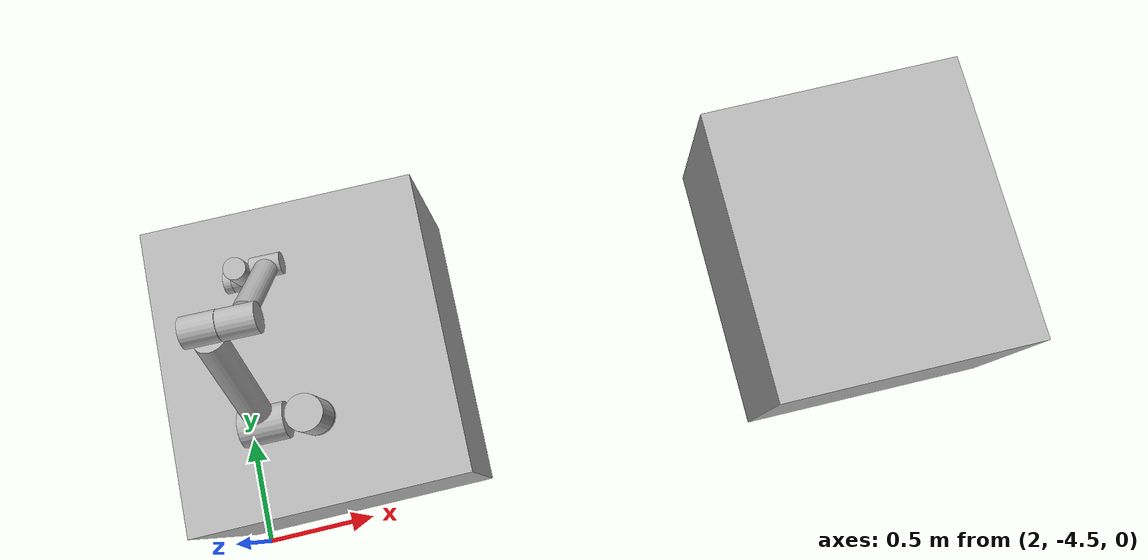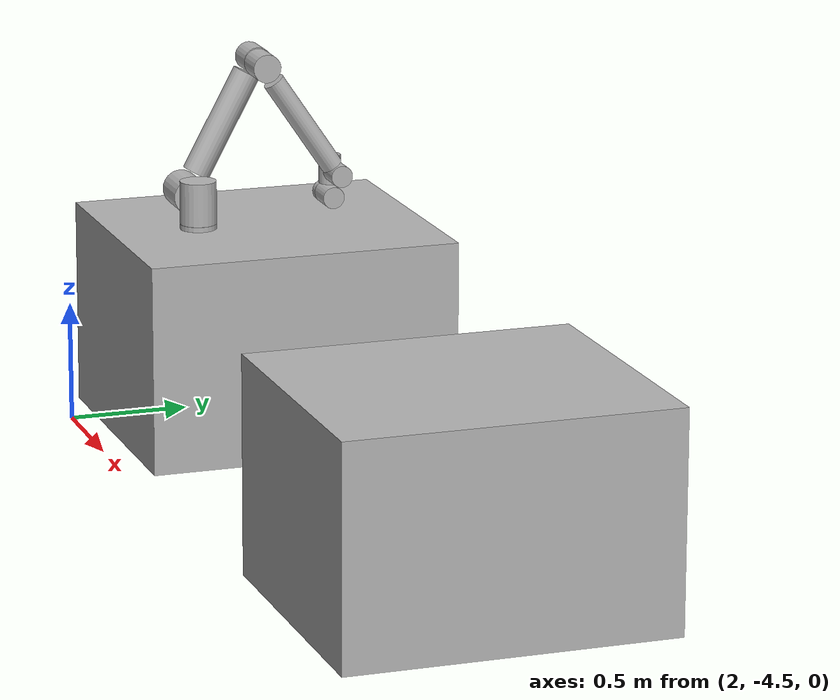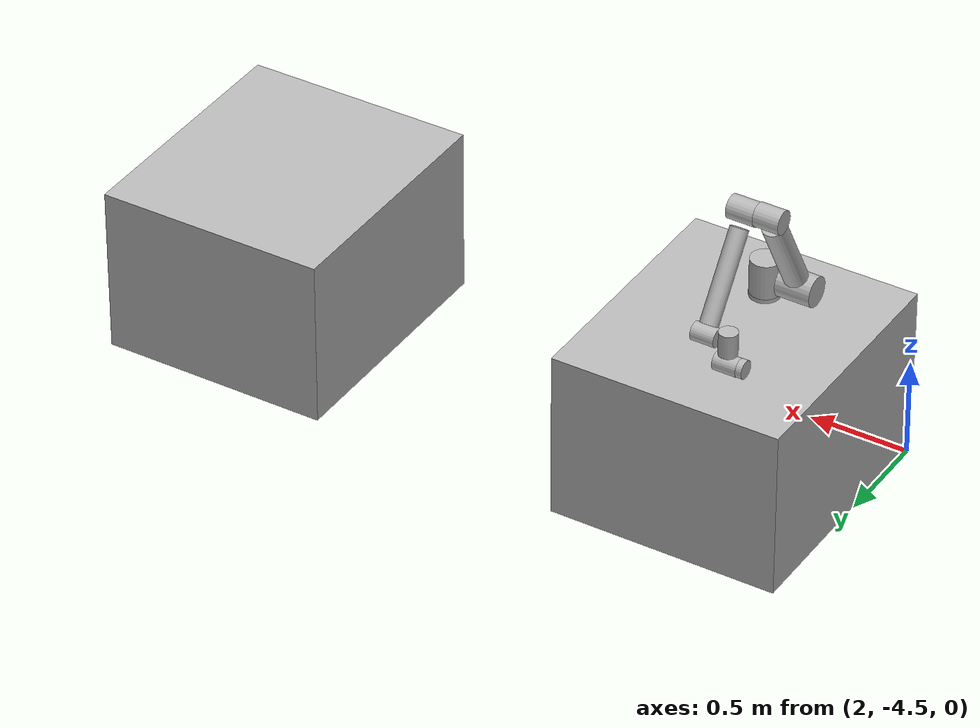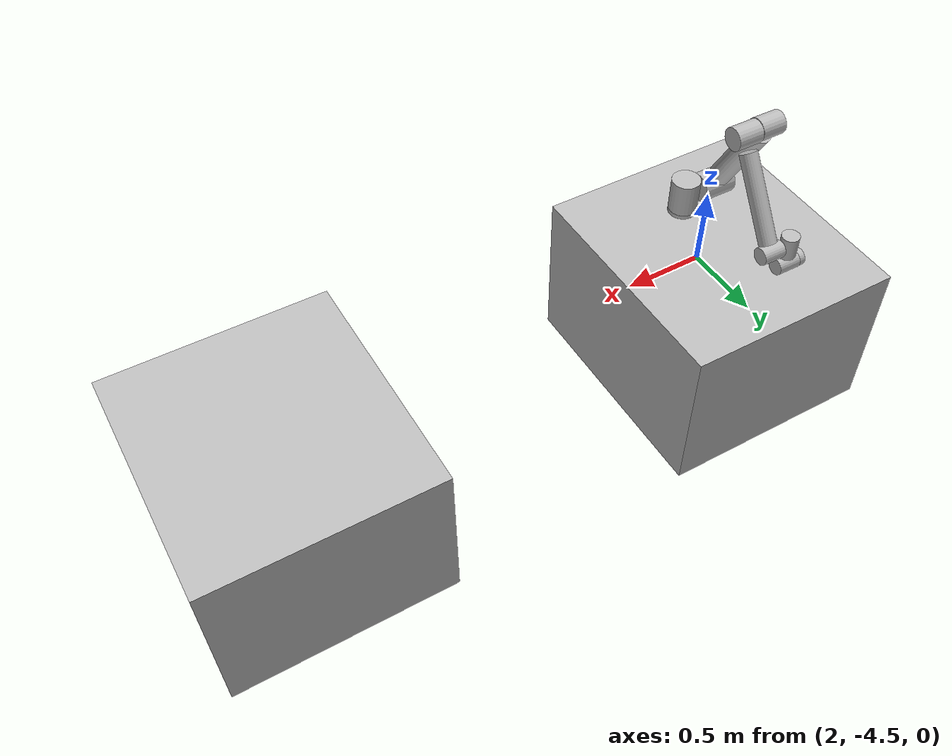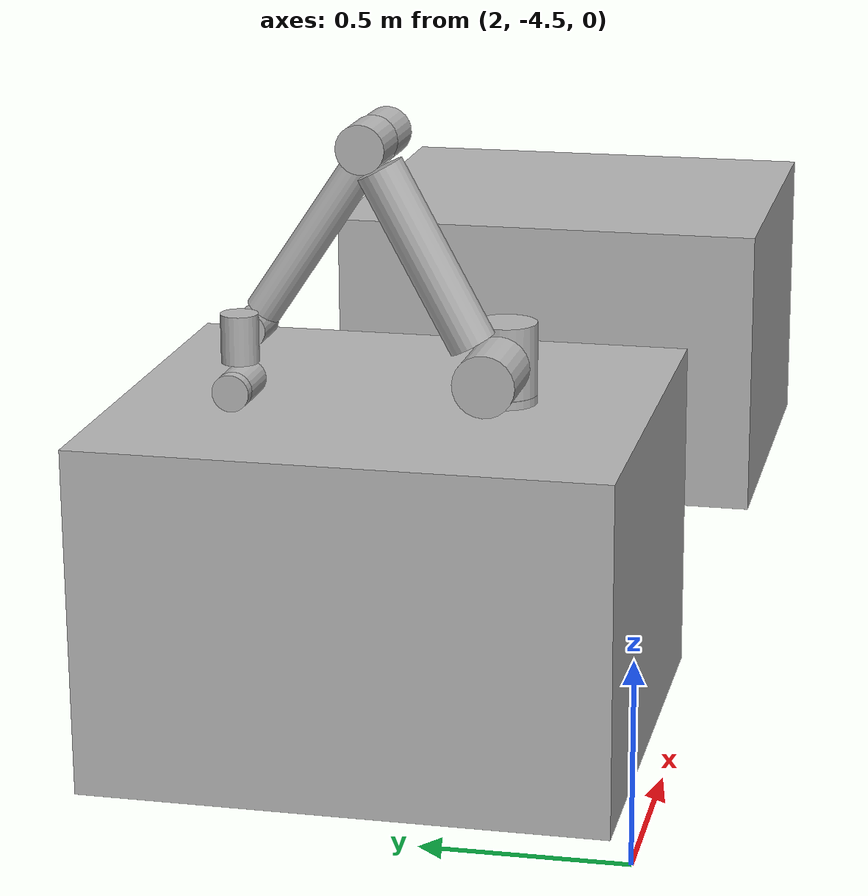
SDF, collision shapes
<sdf version="1.6">
 <model name="erica">
  <model name="cabinet1_clone_0">
   <link name="link_0">
    <inertial>
     <mass>1</mass>
     <inertia>
      <ixx>0.166667</ixx>
      <ixy>0</ixy>
      <ixz>0</ixz>
      <iyy>0.166667</iyy>
      <iyz>0</iyz>
      <izz>0.166667</izz>
     </inertia>
    </inertial>
    <visual name="visual">
     <geometry>
      <mesh><uri>model://erica/elements/cabinet1/meshes/model.dae</uri><scale>0.15 0.15 0.15</scale></mesh>
     </geometry>
    </visual>
    <collision name="collision_1">
     <pose>0.17 0.03 0.5 0 -0 0</pose>
     <geometry><box><size>1.28 1.15 0.85</size></box></geometry>
     <surface>
      <friction>
       <ode><mu>1</mu><mu2>1</mu2><fdir1>0 0 0</fdir1><slip1>0</slip1><slip2>0</slip2></ode>
       <torsional>
        <coefficient>1</coefficient>
        <patch_radius>0</patch_radius>
        <surface_radius>0</surface_radius>
        <use_patch_radius>1</use_patch_radius>
        <ode><slip>0</slip></ode>
       </torsional>
      </friction>
      <bounce><restitution_coefficient>0</restitution_coefficient><threshold>1e+06</threshold></bounce>
      <contact>
       <collide_without_contact>0</collide_without_contact>
       <collide_without_contact_bitmask>1</collide_without_contact_bitmask>
       <collide_bitmask>1</collide_bitmask>
       <ode>
        <soft_cfm>0</soft_cfm>
        <soft_erp>0.2</soft_erp>
        <kp>1e+13</kp>
        <kd>1</kd>
        <max_vel>0.01</max_vel>
        <min_depth>0</min_depth>
       </ode>
       <bullet>
        <split_impulse>1</split_impulse>
        <split_impulse_penetration_threshold>-0.01</split_impulse_penetration_threshold>
        <soft_cfm>0</soft_cfm>
        <soft_erp>0.2</soft_erp>
        <kp>1e+13</kp>
        <kd>1</kd>
       </bullet>
      </contact>
     </surface>
    </collision>
   </link>
   <static>1</static>
   <pose>2.56668 -3.98766 0 0 -0 1.57009</pose>
  </model>
  <model name="cabinet1_clone_1">
   <link name="link_0">
    <inertial>
     <mass>1</mass>
     <inertia>
      <ixx>0.166667</ixx>
      <ixy>0</ixy>
      <ixz>0</ixz>
      <iyy>0.166667</iyy>
      <iyz>0</iyz>
      <izz>0.166667</izz>
     </inertia>
    </inertial>
    <visual name="visual">
     <geometry>
      <mesh><uri>model://erica/elements/cabinet1/meshes/model.dae</uri><scale>0.15 0.15 0.15</scale></mesh>
     </geometry>
    </visual>
    <collision name="collision_1">
     <pose>0.17 0.03 0.5 0 -0 0</pose>
     <geometry><box><size>1.28 1.15 0.85</size></box></geometry>
     <surface>
      <friction>
       <ode><mu>1</mu><mu2>1</mu2><fdir1>0 0 0</fdir1><slip1>0</slip1><slip2>0</slip2></ode>
       <torsional>
        <coefficient>1</coefficient>
        <patch_radius>0</patch_radius>
        <surface_radius>0</surface_radius>
        <use_patch_radius>1</use_patch_radius>
        <ode><slip>0</slip></ode>
       </torsional>
      </friction>
      <bounce><restitution_coefficient>0</restitution_coefficient><threshold>1e+06</threshold></bounce>
      <contact>
       <collide_without_contact>0</collide_without_contact>
       <collide_without_contact_bitmask>1</collide_without_contact_bitmask>
       <collide_bitmask>1</collide_bitmask>
       <ode>
        <soft_cfm>0</soft_cfm>
        <soft_erp>0.2</soft_erp>
        <kp>1e+13</kp>
        <kd>1</kd>
        <max_vel>0.01</max_vel>
        <min_depth>0</min_depth>
       </ode>
       <bullet>
        <split_impulse>1</split_impulse>
        <split_impulse_penetration_threshold>-0.01</split_impulse_penetration_threshold>
        <soft_cfm>0</soft_cfm>
        <soft_erp>0.2</soft_erp>
        <kp>1e+13</kp>
        <kd>1</kd>
       </bullet>
      </contact>
     </surface>
    </collision>
   </link>
   <static>1</static>
   <pose>4.98483 -4.01451 0 0 -0 1.57009</pose>
  </model>
  <model name="ur10_clone_clone_0">
   <link name="base">
    <inertial>
     <mass>4</mass>
     <inertia>
      <ixx>0.00610633</ixx>
      <ixy>0</ixy>
      <ixz>0</ixz>
      <iyy>0.00610633</iyy>
      <iyz>0</iyz>
      <izz>0.01125</izz>
     </inertia>
    </inertial>
    <collision name="collision">
     <pose>0 0 0.019 0 -0 0</pose>
     <geometry><cylinder><radius>0.075</radius><length>0.038</length></cylinder></geometry>
    </collision>
    <visual name="visual"><geometry><mesh><uri>model://ur10/meshes/base.dae</uri></mesh></geometry></visual>
   </link>
   <link name="shoulder">
    <pose>0 0 0.1273 0 -0 0</pose>
    <inertial>
     <mass>7.778</mass>
     <inertia>
      <ixx>0.0314743</ixx>
      <ixy>0</ixy>
      <ixz>0</ixz>
      <iyy>0.0314743</iyy>
      <iyz>0</iyz>
      <izz>0.0218756</izz>
     </inertia>
    </inertial>
    <collision name="collision">
     <geometry><cylinder><radius>0.075</radius><length>0.177</length></cylinder></geometry>
    </collision>
    <visual name="visual"><geometry><mesh><uri>model://ur10/meshes/shoulder.dae</uri></mesh></geometry></visual>
   </link>
   <link name="upper_arm">
    <pose>0 0.220941 0.1273 0 0.495268 0</pose>
    <inertial>
     <pose>0 0 0.306 0 -0 0</pose>
     <mass>12.93</mass>
     <inertia>
      <ixx>0.421754</ixx>
      <ixy>0</ixy>
      <ixz>0</ixz>
      <iyy>0.421754</iyy>
      <iyz>0</iyz>
      <izz>0.0363656</izz>
     </inertia>
    </inertial>
    <collision name="collision1">
     <pose>0 -0.045 0 1.5707 -0 0</pose>
     <geometry><cylinder><radius>0.075</radius><length>0.177</length></cylinder></geometry>
    </collision>
    <collision name="collision2">
     <pose>0 -0.0436 0.32 0 -0 1.5707</pose>
     <geometry><cylinder><radius>0.058</radius><length>0.461</length></cylinder></geometry>
    </collision>
    <collision name="collision3">
     <pose>0 -0.04 0.613 1.5707 -0 0</pose>
     <geometry><cylinder><radius>0.058</radius><length>0.129</length></cylinder></geometry>
    </collision>
    <visual name="visual"><geometry><mesh><uri>model://ur10/meshes/upperarm.dae</uri></mesh></geometry></visual>
   </link>
   <link name="forearm">
    <pose>0.290881 0.049041 0.663009 -3.14159 0.593801 -3.14159</pose>
    <inertial>
     <pose>0 0 0.28615 0 -0 0</pose>
     <mass>3.87</mass>
     <inertia>
      <ixx>0.11107</ixx>
      <ixy>0</ixy>
      <ixz>0</ixz>
      <iyy>0.11107</iyy>
      <iyz>0</iyz>
      <izz>0.0108844</izz>
     </inertia>
    </inertial>
    <collision name="collision1">
     <pose>0 0 0.001 1.5707 -0 0</pose>
     <geometry><cylinder><radius>0.058</radius><length>0.136</length></cylinder></geometry>
    </collision>
    <collision name="collision2">
     <pose>0 0 0.305 0 -0 1.5707</pose>
     <geometry><cylinder><radius>0.045</radius><length>0.447</length></cylinder></geometry>
    </collision>
    <collision name="collision3">
     <pose>0 0.001 0.5735 1.5707 -0 0</pose>
     <geometry><cylinder><radius>0.045</radius><length>0.119</length></cylinder></geometry>
    </collision>
    <visual name="visua"><geometry><mesh><uri>model://ur10/meshes/forearm.dae</uri></mesh></geometry></visual>
   </link>
   <link name="wrist_1">
    <pose>0.612763 0.048289 0.188032 3.14159 -0 3.14159</pose>
    <inertial>
     <mass>1.96</mass>
     <inertia>
      <ixx>0.00510825</ixx>
      <ixy>0</ixy>
      <ixz>0</ixz>
      <iyy>0.00510825</iyy>
      <iyz>0</iyz>
      <izz>0.0055125</izz>
     </inertia>
    </inertial>
    <collision name="collision">
     <pose>0 0.115 0.0025 0 -0 0</pose>
     <geometry><cylinder><radius>0.0455</radius><length>0.119</length></cylinder></geometry>
    </collision>
    <visual name="visual"><geometry><mesh><uri>model://ur10/meshes/wrist1.dae</uri></mesh></geometry></visual>
   </link>
   <link name="wrist_2">
    <pose>0.612784 0.163041 0.188126 3.14159 -0 3.14159</pose>
    <inertial>
     <mass>1.96</mass>
     <inertia>
      <ixx>0.00510825</ixx>
      <ixy>0</ixy>
      <ixz>0</ixz>
      <iyy>0.00510825</iyy>
      <iyz>0</iyz>
      <izz>0.0055125</izz>
     </inertia>
    </inertial>
    <collision name="collision">
     <pose>0 0.002 0.11659 1.5707 -0 0</pose>
     <geometry><cylinder><radius>0.0455</radius><length>0.119</length></cylinder></geometry>
    </collision>
    <visual name="visual"><geometry><mesh><uri>model://ur10/meshes/wrist2.dae</uri></mesh></geometry></visual>
   </link>
   <link name="wrist_3">
    <pose>0.612058 0.163655 0.072656 3.14159 -0 3.14159</pose>
    <inertial>
     <mass>0.202</mass>
     <inertia>
      <ixx>0.000526462</ixx>
      <ixy>0</ixy>
      <ixz>0</ixz>
      <iyy>0.000526462</iyy>
      <iyz>0</iyz>
      <izz>0.000568125</izz>
     </inertia>
    </inertial>
    <collision name="collision">
     <pose>0 0.0765 0 1.5707 -0 0</pose>
     <geometry><cylinder><radius>0.045</radius><length>0.031</length></cylinder></geometry>
    </collision>
    <visual name="visual"><geometry><mesh><uri>model://ur10/meshes/wrist3.dae</uri></mesh></geometry></visual>
   </link>
   <static>1</static>
   <pose>2.54693 -4.09824 0.907896 0 -0 1.56</pose>
  </model>
  <static>1</static>
 </model>
</sdf>
